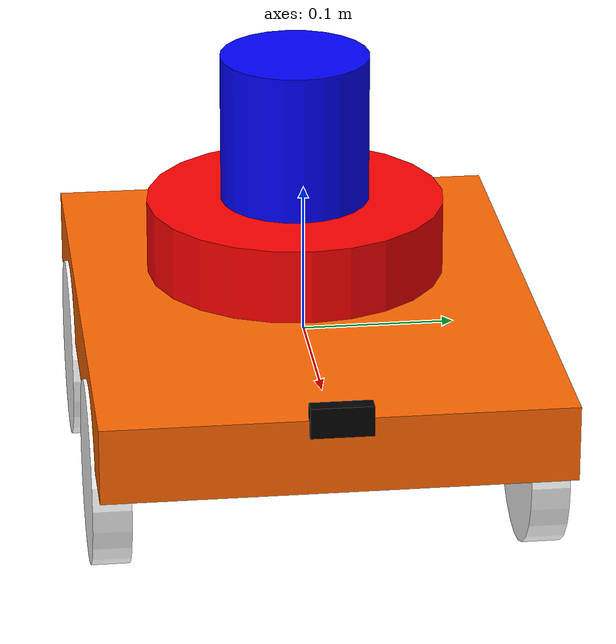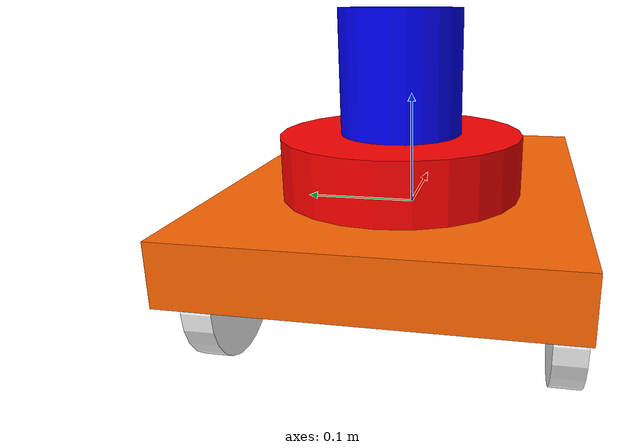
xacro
<?xml version="1.0" ?>
<robot name="tank_model" xmlns:xacro="http://www.ros.org/wiki/xacro">

    <xacro:include filename="$(find tank_model)/urdf/wheel_gazebo.xacro" />
    <xacro:include filename="$(find tank_model)/urdf/camera_gazebo.xacro"/>

    <xacro:macro name="wheel_joint" params="prefix lr_reflect fb_reflect">
        <joint name="${prefix}_wheel_joint" type="continuous">
            <origin xyz="${lr_reflect*0.1} ${fb_reflect*0.14} -0.05" rpy="0 0 0"/>
            <parent link="base_link"/>
            <child link="${prefix}_wheel_link"/>
            <axis xyz="0 1 0"/>
        </joint>
    </xacro:macro>

    <link name="base_link">
        <visual>
            <origin xyz=" 0 0 0" rpy="0 0 0" />
            <geometry>
                <box size="0.4 0.3 0.05" />
            </geometry>
            <material name="yellow">
                <color rgba="1 0.4 0 1"/>
            </material>
        </visual>
    </link>

    <joint name="tank_camera_joint" type="fixed">
        <origin xyz="0.2 0 0.025" rpy="0 0 0"/>
        <parent link="base_link"/>
        <child link="front_camera_link"/>
        <axis xyz="0 1 0"/>
    </joint>

    <xacro:usb_camera prefix="front_camera"/>

    <joint name="tank_body_joint" type="fixed">
        <origin xyz="-0.05 0 0.025" rpy="0 0 0"/>
        <parent link="base_link"/>
        <child link="tank_body_link"/>
        <axis xyz="0 1 0"/>
    </joint>

    <link name="tank_body_link">
        <visual>
            <origin xyz="0 0 0.025" rpy="0 0 0"/>
            <geometry>
                <cylinder radius="0.1" length="0.05"/>
            </geometry>
            <material name="red">
                <color rgba="1 0 0 1"/>
            </material>
        </visual>
    </link>

    <joint name="tank_laser_joint" type="fixed">
        <origin xyz="0 0 0.05" rpy="0 0 0"/>
        <parent link="tank_body_link"/>
        <child link="tank_laser_link"/>
        <axis xyz="0 1 0"/>
    </joint>

    <link name="tank_laser_link">
        <visual>
            <origin xyz="0 0 0.05" rpy="0 0 0"/>
            <geometry>
                <cylinder radius="0.05" length="0.1"/>
            </geometry>
            <material name="blue">
                <color rgba="0 0 1 1"/>
            </material>
        </visual>
    </link>
macro
    <xacro:wheel_joint prefix="left_front" lr_reflect="1" fb_reflect="1"/>
    <xacro:wheel prefix="left_front"/>

    <xacro:wheel_joint prefix="left" lr_reflect="1" fb_reflect="-1"/>
    <xacro:wheel prefix="left"/>

    <xacro:wheel_joint prefix="right_front" lr_reflect="-1" fb_reflect="1"/>
    <xacro:wheel prefix="right_front"/>

    <xacro:wheel_joint prefix="right" lr_reflect="-1" fb_reflect="-1"/>
    <xacro:wheel prefix="right"/>

    <gazebo>
        <plugin name="differential_drive_controller"
                filename="libgazebo_ros_diff_drive.so">
                <update_rate>30</update_rate>
                <left_joint>left_front_wheel_joint</left_joint>
                <right_joint>right_front_wheel_joint</right_joint>
                <wheel_separation>${wheel_joint_y*2}</wheel_separation>
                <wheel_diameter>${2*wheel_radius}</wheel_diameter>
                <max_wheel_torque>20</max_wheel_torque>
                <max_wheel_acceleration>1.0</max_wheel_acceleration>
                <command_topic>cmd_vel</command_topic>
                <publish_odom>true</publish_odom>
                <publish_odom_tf>true</publish_odom_tf>
                <publish_wheel_tf>true</publish_wheel_tf>
                <odometry_topic>odom</odometry_topic>
                <odometry_frame>odom</odometry_frame>
                <robot_base_frame>base_footprint</robot_base_frame>
                <odometry_source>1</odometry_source>
        </plugin>
    </gazebo>

</robot>

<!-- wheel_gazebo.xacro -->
<robot xmlns:xacro="http://www.ros.org/wiki/xacro" name="wheel">

    <xacro:include filename="$(find tank_model)/urdf/common_gazebo.xacro"/>

    <xacro:property name="wheel_mass" value="0.2"/>
    <xacro:property name="wheel_radius" value="0.06"/>
    <xacro:property name="wheel_length" value="0.025"/>
    <xacro:property name="wheel_joint_y" value="0.19"/>

    <xacro:macro name="wheel" params="prefix">
        <link name="${prefix}_wheel_link">
            <visual>
                <origin xyz="0 0 0" rpy="${M_PI/2} 0 0"/>
                <geometry>
                    <cylinder radius="${wheel_radius}" length="${wheel_length}"/>
                </geometry>
                <material name="Gray">
                    <color rgba="1 1 1 0.9"/>
                </material>
            </visual>
            <collision>
                <origin xyz="0 0 0" rpy="${M_PI/2} 0 0"/>
                <geometry>
                    <cylinder radius="${wheel_radius}" length="${wheel_length}"/>
                </geometry>
            </collision>
            <xacro:cylinder_inertial_matrix m="${wheel_mass}" r="${wheel_radius}" h="${wheel_length}"/>
        </link>

        <transmission name="${prefix}_wheel_joint_trans">
            <type>transmission_interface/SimpleTransmission</type>
            <joint name="${prefix}_wheel_joint" >
                <hardwareInterface>hardware_interface/VelocityJointInterface</hardwareInterface>
            </joint>
            <actuator name="${prefix}_wheel_joint_motor">
                <hardwareInterface>hardware_interface/VelocityJointInterface</hardwareInterface>
                <mechanicalReduction>1</mechanicalReduction>
            </actuator>
        </transmission>
    </xacro:macro>

</robot>

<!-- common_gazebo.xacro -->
<robot xmlns:xacro="http://www.ros.org/wiki/xacro" name="camera">

    <xacro:property name="M_PI" value="3.1415926"/>

    <xacro:macro name="cylinder_inertial_matrix" params="m r h">
        <inertial>
            <mass value="${m}" />
            <inertia ixx="${m*(3*r*r+h*h)/12}" ixy = "0" ixz = "0"
                iyy="${m*(3*r*r+h*h)/12}" iyz = "0"
                izz="${m*r*r/2}" />
        </inertial>
    </xacro:macro>

</robot>

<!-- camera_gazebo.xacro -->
<robot xmlns:xacro="http://www.ros.org/wiki/xacro" name="camera">

    <xacro:macro name="usb_camera" params="prefix:=camera">
        <link name="${prefix}_link">
            <visual>
                <origin xyz="0 0 0" rpy="0 0 0"/>
                <geometry>
                    <box size="0.01 0.04 0.02"/>
                </geometry>
                <material name="black">
                    <color rgba="0 0 0 1"/>
                </material>
            </visual>
            <collision>
                <origin xyz="0 0 0" rpy="0 0 0"/>
                <geometry>
                    <box size="0.01 0.04 0.02"/>
                </geometry>
            </collision>
            <inertial>
                <mass value="0.1" />
                <origin xyz="0 0 0" />
                <inertia ixx="0.01" ixy="0.0" ixz="0.0"
                         iyy="0.01" iyz="0.0"
                         izz="0.01" />
            </inertial>
        </link>

        <gazebo reference="${prefix}_link">
            <sensor name="camera_node" type="camera">
                <update_rate>30.0</update_rate>
                <camera name="head">
                    <horizontal_fov>1.3962634</horizontal_fov>
                    <image>
                        <width>1280</width>
                        <height>720</height>
                        <format>R8G8B8</format>
                    </image>
                    <clip>
                        <near>0.02</near>
                        <far>300</far>
                    </clip>
                    <noise>
                        <type>gaussian</type>
                        <mean>0.0</mean>
                        <stddev>0.007</stddev>
                    </noise>
                </camera>
                <plugin name="gazebo_camera" filename="libgazebo_ros_camera.so">
				    <ros>
				        <remapping>~/image_raw:=image_raw</remapping>
				        <remapping>~/camera_info:=camera_info</remapping>
				    </ros>
				    <camera_name>${prefix}</camera_name>
				    <frame_name>${prefix}_link</frame_name>
				    <hack_baseline>0.2</hack_baseline>
                </plugin>
            </sensor>
        </gazebo>
    </xacro:macro>

</robot>
